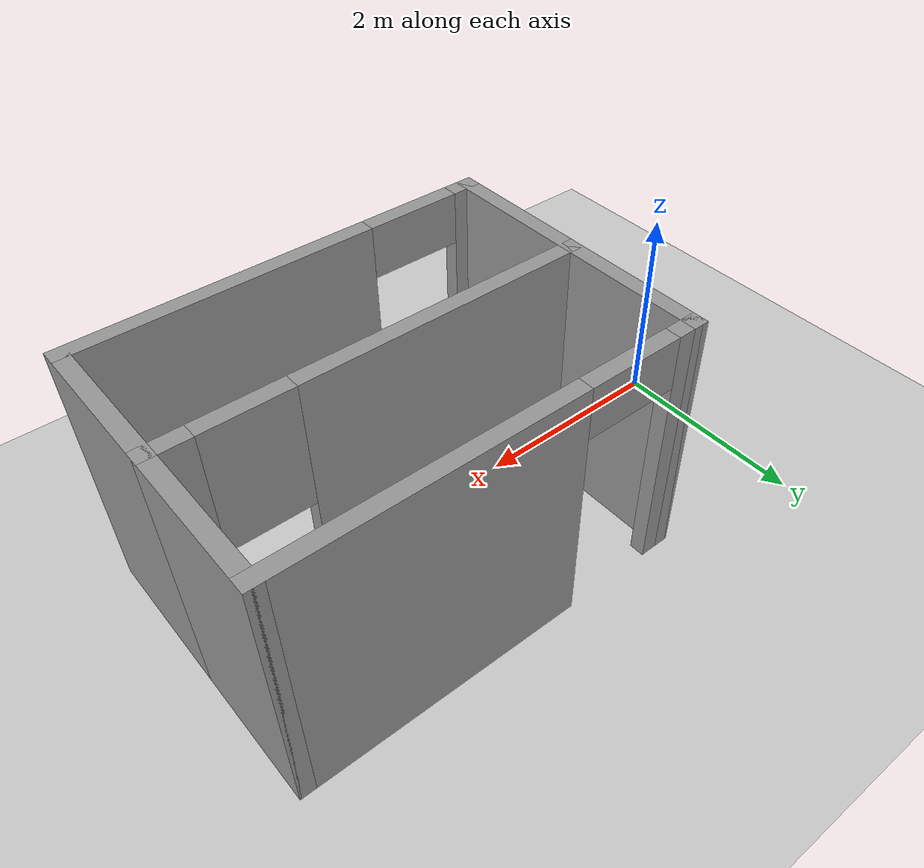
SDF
<sdf version="1.6">
 <world name="default">
  <light name="sun" type="directional">
   <pose>0 0 10 0 -0 0</pose>
   <diffuse>0.8 0.8 0.8 1</diffuse>
   <specular>0.2 0.2 0.2 1</specular>
   <attenuation>
    <range>1000</range>
    <constant>0.9</constant>
    <linear>0.01</linear>
    <quadratic>0.001</quadratic>
   </attenuation>
   <direction>-0.5 0.1 -0.9</direction>
  </light>
  <model name="ground_plane">
   <static>1</static>
   <link name="link">
    <collision name="collision">
     <geometry><plane><normal>0 0 1</normal><size>100 100</size></plane></geometry>
     <surface>
      <contact><collide_bitmask>65535</collide_bitmask></contact>
      <friction><ode><mu>100</mu><mu2>50</mu2></ode></friction>
     </surface>
    </collision>
    <visual name="visual">
     <cast_shadows>0</cast_shadows>
     <geometry><plane><normal>0 0 1</normal><size>100 100</size></plane></geometry>
     <material>
      <script><uri>file://media/materials/scripts/gazebo.material</uri><name>Gazebo/Grey</name></script>
     </material>
    </visual>
   </link>
  </model>
  <gravity>0 0 -9.8</gravity>
  <magnetic_field>6e-06 2.3e-05 -4.2e-05</magnetic_field>
  <atmosphere type="adiabatic"/>
  <physics name="default_physics" default="0" type="ode">
   <max_step_size>0.001</max_step_size>
   <real_time_factor>1</real_time_factor>
   <real_time_update_rate>1000</real_time_update_rate>
  </physics>
  <scene><ambient>0.4 0.4 0.4 1</ambient><background>0.7 0.7 0.7 1</background><shadows>1</shadows></scene>
  <audio><device>default</device></audio>
  <spherical_coordinates>
   <surface_model>EARTH_WGS84</surface_model>
   <latitude_deg>0</latitude_deg>
   <longitude_deg>0</longitude_deg>
   <elevation>0</elevation>
   <heading_deg>0</heading_deg>
  </spherical_coordinates>
  <model name="Untitled">
   <pose>3.40065 0.306522 0 0 -0 0</pose>
   <link name="Wall_0">
    <pose>-0 -1.35 0 0 -0 0</pose>
    <visual name="Wall_0_Visual_0">
     <pose>-1.85706 0 1.25 0 -0 0</pose>
     <geometry><box><size>0.28587 0.15 2.5</size></box></geometry>
     <material>
      <script><uri>file://media/materials/scripts/gazebo.material</uri><name>Gazebo/Grey</name></script>
      <ambient>1 1 1 1</ambient>
     </material>
     <meta><layer>0</layer></meta>
    </visual>
    <collision name="Wall_0_Collision_0">
     <geometry><box><size>0.28587 0.15 2.5</size></box></geometry>
     <pose>-1.85706 0 1.25 0 -0 0</pose>
    </collision>
    <visual name="Wall_0_Visual_1">
     <pose>0.592935 0 1.25 0 -0 0</pose>
     <geometry><box><size>2.81413 0.15 2.5</size></box></geometry>
     <material>
      <script><uri>file://media/materials/scripts/gazebo.material</uri><name>Gazebo/Grey</name></script>
      <ambient>1 1 1 1</ambient>
     </material>
     <meta><layer>0</layer></meta>
    </visual>
    <collision name="Wall_0_Collision_1">
     <geometry><box><size>2.81413 0.15 2.5</size></box></geometry>
     <pose>0.592935 0 1.25 0 -0 0</pose>
    </collision>
    <visual name="Wall_0_Visual_2">
     <pose>-1.26413 0 2.25 0 -0 0</pose>
     <geometry><box><size>0.9 0.15 0.5</size></box></geometry>
     <material>
      <script><uri>file://media/materials/scripts/gazebo.material</uri><name>Gazebo/Grey</name></script>
      <ambient>1 1 1 1</ambient>
     </material>
     <meta><layer>0</layer></meta>
    </visual>
    <collision name="Wall_0_Collision_2">
     <geometry><box><size>0.9 0.15 0.5</size></box></geometry>
     <pose>-1.26413 0 2.25 0 -0 0</pose>
    </collision>
   </link>
   <link name="Wall_1">
    <collision name="Wall_1_Collision">
     <geometry><box><size>1.5 0.15 2.5</size></box></geometry>
     <pose>0 0 1.25 0 -0 0</pose>
    </collision>
    <visual name="Wall_1_Visual">
     <pose>0 0 1.25 0 -0 0</pose>
     <geometry><box><size>1.5 0.15 2.5</size></box></geometry>
     <material>
      <script><uri>file://media/materials/scripts/gazebo.material</uri><name>Gazebo/Grey</name></script>
      <ambient>1 1 1 1</ambient>
     </material>
     <meta><layer>0</layer></meta>
    </visual>
    <pose>1.925 -0.675 0 0 -0 1.5708</pose>
   </link>
   <link name="Wall_2">
    <pose>-0 0 0 0 -0 3.14159</pose>
    <visual name="Wall_2_Visual_0">
     <pose>-1.78967 0 1.25 0 -0 0</pose>
     <geometry><box><size>0.420652 0.15 2.5</size></box></geometry>
     <material>
      <script><uri>file://media/materials/scripts/gazebo.material</uri><name>Gazebo/Grey</name></script>
      <ambient>1 1 1 1</ambient>
     </material>
     <meta><layer>0</layer></meta>
    </visual>
    <collision name="Wall_2_Collision_0">
     <geometry><box><size>0.420652 0.15 2.5</size></box></geometry>
     <pose>-1.78967 0 1.25 0 -0 0</pose>
    </collision>
    <visual name="Wall_2_Visual_1">
     <pose>0.210326 0 0.25 0 -0 0</pose>
     <geometry><box><size>3.57935 0.15 0.5</size></box></geometry>
     <material>
      <script><uri>file://media/materials/scripts/gazebo.material</uri><name>Gazebo/Grey</name></script>
      <ambient>1 1 1 1</ambient>
     </material>
     <meta><layer>0</layer></meta>
    </visual>
    <collision name="Wall_2_Collision_1">
     <geometry><box><size>3.57935 0.15 0.5</size></box></geometry>
     <pose>0.210326 0 0.25 0 -0 0</pose>
    </collision>
    <visual name="Wall_2_Visual_2">
     <pose>0.610326 0 1.5 0 -0 0</pose>
     <geometry><box><size>2.77935 0.15 2</size></box></geometry>
     <material>
      <script><uri>file://media/materials/scripts/gazebo.material</uri><name>Gazebo/Grey</name></script>
      <ambient>1 1 1 1</ambient>
     </material>
     <meta><layer>0</layer></meta>
    </visual>
    <collision name="Wall_2_Collision_2">
     <geometry><box><size>2.77935 0.15 2</size></box></geometry>
     <pose>0.610326 0 1.5 0 -0 0</pose>
    </collision>
    <visual name="Wall_2_Visual_3">
     <pose>-1.17935 0 1.9 0 -0 0</pose>
     <geometry><box><size>0.8 0.15 1.2</size></box></geometry>
     <material>
      <script><uri>file://media/materials/scripts/gazebo.material</uri><name>Gazebo/Grey</name></script>
      <ambient>1 1 1 1</ambient>
     </material>
     <meta><layer>0</layer></meta>
    </visual>
    <collision name="Wall_2_Collision_3">
     <geometry><box><size>0.8 0.15 1.2</size></box></geometry>
     <pose>-1.17935 0 1.9 0 -0 0</pose>
    </collision>
   </link>
   <link name="Wall_3">
    <collision name="Wall_3_Collision">
     <geometry><box><size>1.5 0.15 2.5</size></box></geometry>
     <pose>0 0 1.25 0 -0 0</pose>
    </collision>
    <visual name="Wall_3_Visual">
     <pose>0 0 1.25 0 -0 0</pose>
     <geometry><box><size>1.5 0.15 2.5</size></box></geometry>
     <material>
      <script><uri>file://media/materials/scripts/gazebo.material</uri><name>Gazebo/Grey</name></script>
      <ambient>1 1 1 1</ambient>
     </material>
     <meta><layer>0</layer></meta>
    </visual>
    <pose>-1.925 -0.675 0 0 -0 -1.5708</pose>
   </link>
   <link name="Wall_5">
    <collision name="Wall_5_Collision">
     <geometry><box><size>1.5 0.15 2.5</size></box></geometry>
     <pose>0 0 1.25 0 -0 0</pose>
    </collision>
    <visual name="Wall_5_Visual">
     <pose>0 0 1.25 0 -0 0</pose>
     <geometry><box><size>1.5 0.15 2.5</size></box></geometry>
     <material>
      <script><uri>file://media/materials/scripts/gazebo.material</uri><name>Gazebo/Grey</name></script>
      <ambient>1 1 1 1</ambient>
     </material>
     <meta><layer>0</layer></meta>
    </visual>
    <pose>-1.925 0.675 0 0 -0 1.5708</pose>
   </link>
   <link name="Wall_6">
    <pose>-0 1.35 0 0 -0 0</pose>
    <visual name="Wall_6_Visual_0">
     <pose>-1.84402 0 1.25 0 -0 0</pose>
     <geometry><box><size>0.311956 0.15 2.5</size></box></geometry>
     <material>
      <script><uri>file://media/materials/scripts/gazebo.material</uri><name>Gazebo/Grey</name></script>
      <ambient>1 1 1 1</ambient>
     </material>
     <meta><layer>0</layer></meta>
    </visual>
    <collision name="Wall_6_Collision_0">
     <geometry><box><size>0.311956 0.15 2.5</size></box></geometry>
     <pose>-1.84402 0 1.25 0 -0 0</pose>
    </collision>
    <visual name="Wall_6_Visual_1">
     <pose>0.605978 0 1.25 0 -0 0</pose>
     <geometry><box><size>2.78804 0.15 2.5</size></box></geometry>
     <material>
      <script><uri>file://media/materials/scripts/gazebo.material</uri><name>Gazebo/Grey</name></script>
      <ambient>1 1 1 1</ambient>
     </material>
     <meta><layer>0</layer></meta>
    </visual>
    <collision name="Wall_6_Collision_1">
     <geometry><box><size>2.78804 0.15 2.5</size></box></geometry>
     <pose>0.605978 0 1.25 0 -0 0</pose>
    </collision>
    <visual name="Wall_6_Visual_2">
     <pose>-1.23804 0 2.25 0 -0 0</pose>
     <geometry><box><size>0.9 0.15 0.5</size></box></geometry>
     <material>
      <script><uri>file://media/materials/scripts/gazebo.material</uri><name>Gazebo/Grey</name></script>
      <ambient>1 1 1 1</ambient>
     </material>
     <meta><layer>0</layer></meta>
    </visual>
    <collision name="Wall_6_Collision_2">
     <geometry><box><size>0.9 0.15 0.5</size></box></geometry>
     <pose>-1.23804 0 2.25 0 -0 0</pose>
    </collision>
   </link>
   <link name="Wall_7">
    <collision name="Wall_7_Collision">
     <geometry><box><size>1.5 0.15 2.5</size></box></geometry>
     <pose>0 0 1.25 0 -0 0</pose>
    </collision>
    <visual name="Wall_7_Visual">
     <pose>0 0 1.25 0 -0 0</pose>
     <geometry><box><size>1.5 0.15 2.5</size></box></geometry>
     <material>
      <script><uri>file://media/materials/scripts/gazebo.material</uri><name>Gazebo/Grey</name></script>
      <ambient>1 1 1 1</ambient>
     </material>
     <meta><layer>0</layer></meta>
    </visual>
    <pose>1.925 0.675 0 0 -0 -1.5708</pose>
   </link>
   <static>1</static>
  </model>
 </world>
</sdf>
